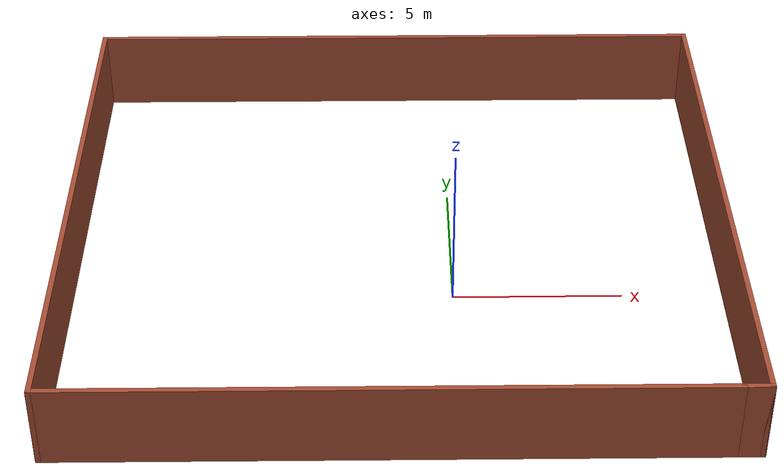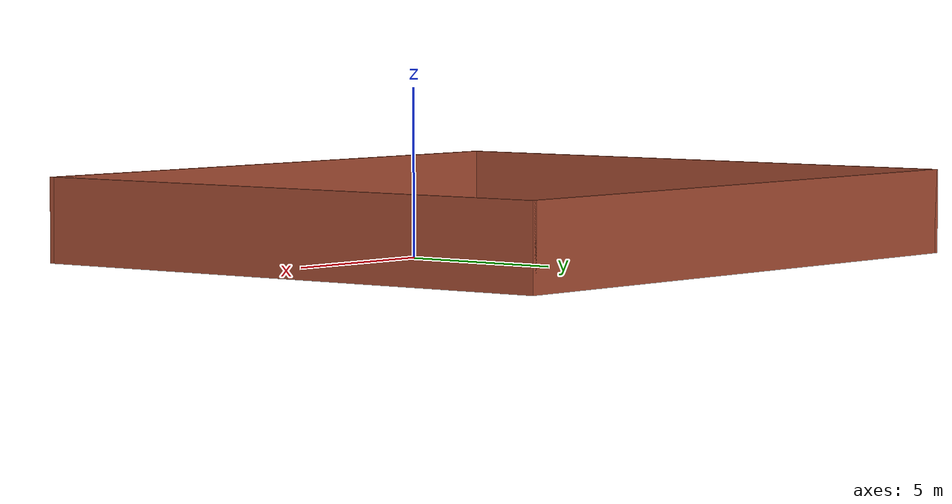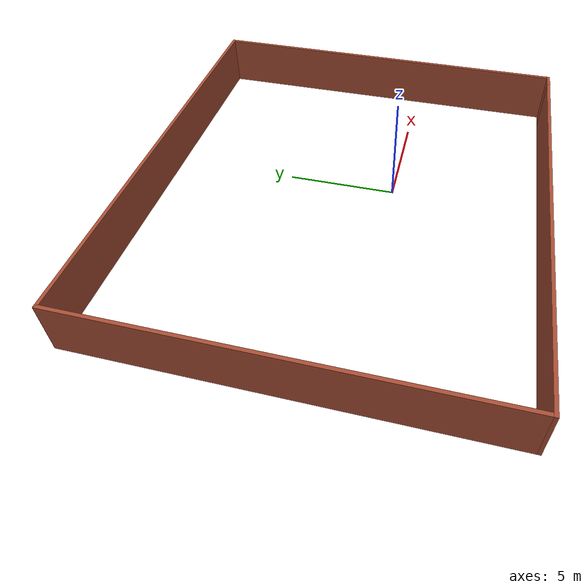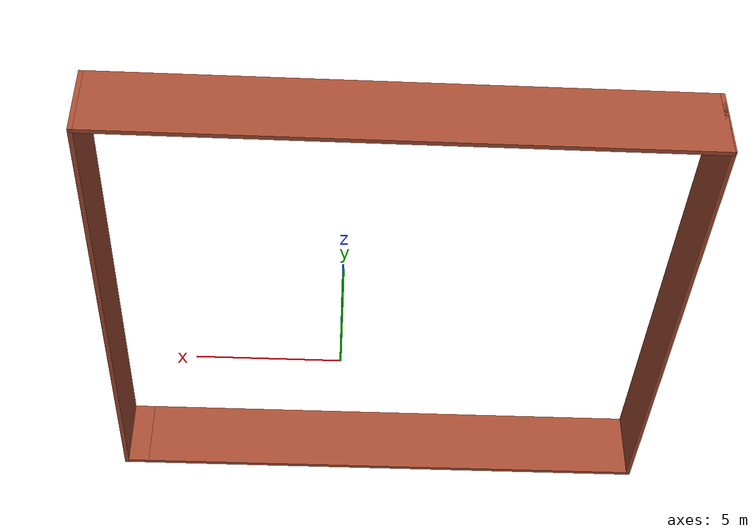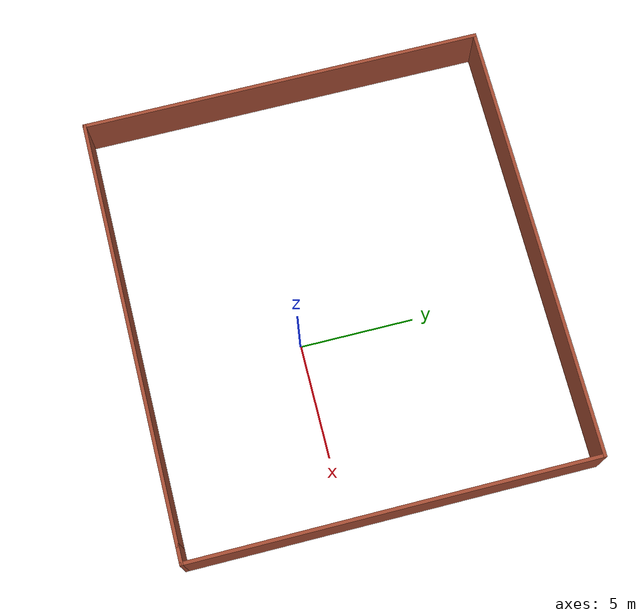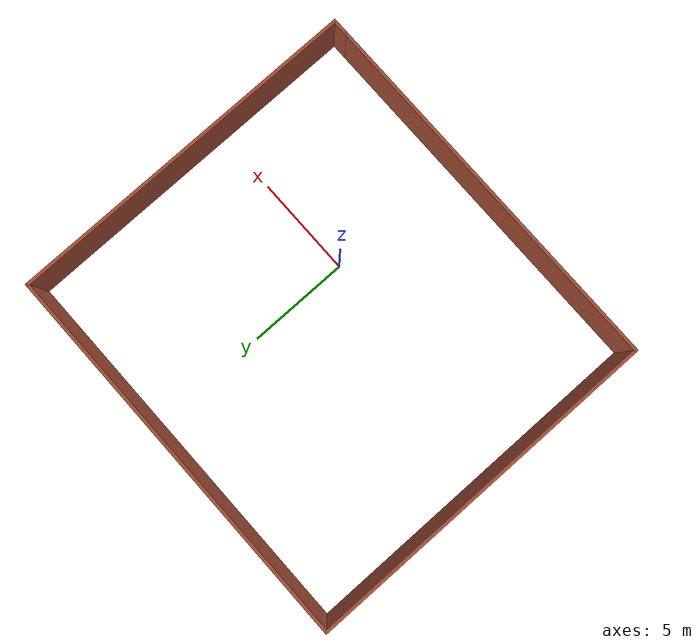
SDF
<?xml version='1.0'?>
<sdf version='1.7'>
  <model name='out_wall'>
    <pose>-1.62417 1.97616 0 0 -0 0</pose>
    <link name='Wall_100'>
      <collision name='Wall_100_Collision'>
        <geometry>
          <box>
            <size>17.75 0.15 2.5</size>
          </box>
        </geometry>
        <pose>0 0 1.25 0 -0 0</pose>
      </collision>
      <visual name='Wall_100_Visual'>
        <pose>0 0 1.25 0 -0 0</pose>
        <geometry>
          <box>
            <size>17.75 0.15 2.5</size>
          </box>
        </geometry>
        <material>
          <script>
            <uri>file://media/materials/scripts/gazebo.material</uri>
            <name>Gazebo/Bricks</name>
          </script>
          <ambient>1 1 1 1</ambient>
        </material>
        <meta>
          <layer>0</layer>
        </meta>
      </visual>
      <pose>9.675 0 0 0 -0 -1.5708</pose>
    </link>
    <link name='Wall_101'>
      <collision name='Wall_101_Collision'>
        <geometry>
          <box>
            <size>0.9 0.15 2.5</size>
          </box>
        </geometry>
        <pose>0 0 1.25 0 -0 0</pose>
      </collision>
      <visual name='Wall_101_Visual'>
        <pose>0 0 1.25 0 -0 0</pose>
        <geometry>
          <box>
            <size>0.9 0.15 2.5</size>
          </box>
        </geometry>
        <material>
          <script>
            <uri>file://media/materials/scripts/gazebo.material</uri>
            <name>Gazebo/Bricks</name>
          </script>
          <ambient>1 1 1 1</ambient>
        </material>
        <meta>
          <layer>0</layer>
        </meta>
      </visual>
      <pose>9.3 -8.8 0 0 -0 3.14159</pose>
    </link>
    <link name='Wall_94'>
      <collision name='Wall_94_Collision'>
        <geometry>
          <box>
            <size>18.75 0.15 2.5</size>
          </box>
        </geometry>
        <pose>0 0 1.25 0 -0 0</pose>
      </collision>
      <visual name='Wall_94_Visual'>
        <pose>0 0 1.25 0 -0 0</pose>
        <geometry>
          <box>
            <size>18.75 0.15 2.5</size>
          </box>
        </geometry>
        <material>
          <script>
            <uri>file://media/materials/scripts/gazebo.material</uri>
            <name>Gazebo/Bricks</name>
          </script>
          <ambient>1 1 1 1</ambient>
        </material>
        <meta>
          <layer>0</layer>
        </meta>
      </visual>
      <pose>-0.375 -8.8 0 0 -0 3.14159</pose>
    </link>
    <link name='Wall_97'>
      <collision name='Wall_97_Collision'>
        <geometry>
          <box>
            <size>17.75 0.15 2.5</size>
          </box>
        </geometry>
        <pose>0 0 1.25 0 -0 0</pose>
      </collision>
      <visual name='Wall_97_Visual'>
        <pose>0 0 1.25 0 -0 0</pose>
        <geometry>
          <box>
            <size>17.75 0.15 2.5</size>
          </box>
        </geometry>
        <material>
          <script>
            <uri>file://media/materials/scripts/gazebo.material</uri>
            <name>Gazebo/Bricks</name>
          </script>
          <ambient>1 1 1 1</ambient>
        </material>
        <meta>
          <layer>0</layer>
        </meta>
      </visual>
      <pose>-9.675 0 0 0 -0 1.5708</pose>
    </link>
    <link name='Wall_99'>
      <collision name='Wall_99_Collision'>
        <geometry>
          <box>
            <size>19.5 0.15 2.5</size>
          </box>
        </geometry>
        <pose>0 0 1.25 0 -0 0</pose>
      </collision>
      <visual name='Wall_99_Visual'>
        <pose>0 0 1.25 0 -0 0</pose>
        <geometry>
          <box>
            <size>19.5 0.15 2.5</size>
          </box>
        </geometry>
        <material>
          <script>
            <uri>file://media/materials/scripts/gazebo.material</uri>
            <name>Gazebo/Bricks</name>
          </script>
          <ambient>1 1 1 1</ambient>
        </material>
        <meta>
          <layer>0</layer>
        </meta>
      </visual>
      <pose>-0 8.8 0 0 -0 0</pose>
    </link>
    <static>1</static>
  </model>
</sdf>
